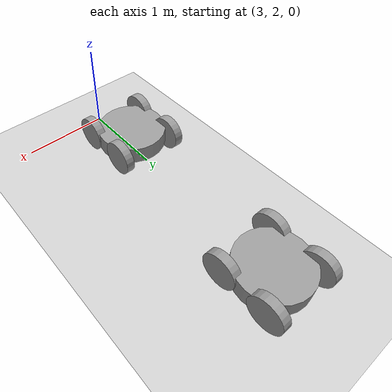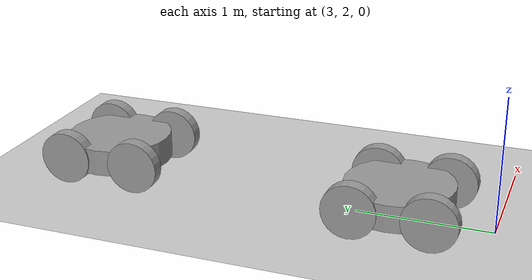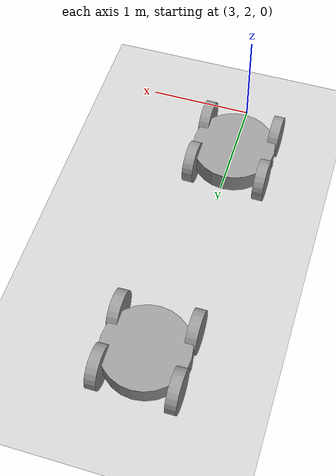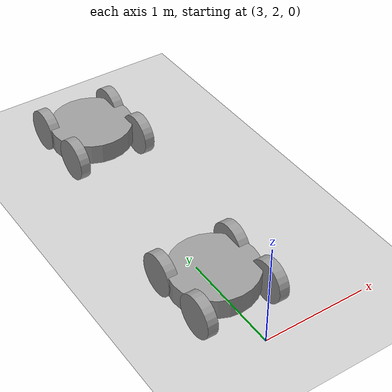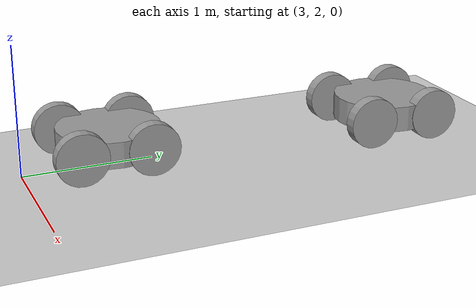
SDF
<sdf version="1.7">
 <world name="default">
  <model name="ground_plane">
   <static>1</static>
   <link name="link">
    <collision name="collision_collision">
     <geometry><plane><normal>0 0 1</normal><size>100 100</size></plane></geometry>
     <surface>
      <contact><collide_bitmask>65535</collide_bitmask></contact>
      <friction><ode><mu>100</mu><mu2>50</mu2></ode></friction>
     </surface>
    </collision>
    <visual name="visual_visual">
     <cast_shadows>0</cast_shadows>
     <geometry><plane><normal>0 0 1</normal><size>100 100</size></plane></geometry>
     <material>
      <script><uri>file://media/materials/scripts/gazebo.material</uri><name>Gazebo/Grey</name></script>
     </material>
    </visual>
   </link>
  </model>
  <model name="robot2">
   <link name="link_0">
    <inertial>
     <mass>1</mass>
     <inertia><ixx>0.145833</ixx><ixy>0</ixy><ixz>0</ixz><iyy>0.145833</iyy><iyz>0</iyz><izz>0.125</izz></inertia>
    </inertial>
    <pose>-0 0.020098 0 0 -0 0</pose>
    <visual name="visual">
     <geometry><cylinder><radius>0.4</radius><length>0.2</length></cylinder></geometry>
     <material>
      <lighting>1</lighting>
      <script><uri>file://media/materials/scripts/gazebo.material</uri><name>Gazebo/Grey</name></script>
      <shader type="pixel"><normal_map>__default__</normal_map></shader>
      <ambient>0.3 0.3 0.3 1</ambient>
      <diffuse>0.7 0.7 0.7 1</diffuse>
      <specular>0.01 0.01 0.01 1</specular>
      <emissive>0 0 0 1</emissive>
     </material>
    </visual>
    <collision name="collision">
     <geometry><cylinder><radius>0.4</radius><length>0.2</length></cylinder></geometry>
     <surface>
      <friction>
       <ode><mu>1</mu><mu2>1</mu2><fdir1>0 0 0</fdir1><slip1>0</slip1><slip2>0</slip2></ode>
       <torsional>
        <coefficient>1</coefficient>
        <patch_radius>0</patch_radius>
        <surface_radius>0</surface_radius>
        <use_patch_radius>1</use_patch_radius>
        <ode><slip>0</slip></ode>
       </torsional>
      </friction>
      <bounce><restitution_coefficient>0</restitution_coefficient><threshold>1e+06</threshold></bounce>
      <contact>
       <collide_without_contact>0</collide_without_contact>
       <collide_without_contact_bitmask>1</collide_without_contact_bitmask>
       <collide_bitmask>1</collide_bitmask>
       <ode>
        <soft_cfm>0</soft_cfm>
        <soft_erp>0.2</soft_erp>
        <kp>1e+13</kp>
        <kd>1</kd>
        <max_vel>0.01</max_vel>
        <min_depth>0</min_depth>
       </ode>
       <bullet>
        <split_impulse>1</split_impulse>
        <split_impulse_penetration_threshold>-0.01</split_impulse_penetration_threshold>
        <soft_cfm>0</soft_cfm>
        <soft_erp>0.2</soft_erp>
        <kp>1e+13</kp>
        <kd>1</kd>
       </bullet>
      </contact>
     </surface>
    </collision>
   </link>
   <link name="link_1">
    <inertial>
     <mass>1</mass>
     <inertia><ixx>0.145833</ixx><ixy>0</ixy><ixz>0</ixz><iyy>0.145833</iyy><iyz>0</iyz><izz>0.125</izz></inertia>
    </inertial>
    <pose>-0.34992 0.280098 0 0 -0 0</pose>
    <visual name="visual">
     <pose>0 0 0 0 1.57 0</pose>
     <geometry><cylinder><radius>0.2</radius><length>0.1</length></cylinder></geometry>
     <material>
      <lighting>1</lighting>
      <script><uri>file://media/materials/scripts/gazebo.material</uri><name>Gazebo/Grey</name></script>
      <shader type="pixel"><normal_map>__default__</normal_map></shader>
      <ambient>0.3 0.3 0.3 1</ambient>
      <diffuse>0.7 0.7 0.7 1</diffuse>
      <specular>0.01 0.01 0.01 1</specular>
      <emissive>0 0 0 1</emissive>
     </material>
    </visual>
    <collision name="collision">
     <pose>0 0 0 0 1.57 0</pose>
     <geometry><cylinder><radius>0.2</radius><length>0.1</length></cylinder></geometry>
     <surface>
      <friction>
       <ode><mu>1</mu><mu2>1</mu2><fdir1>0 0 0</fdir1><slip1>0</slip1><slip2>0</slip2></ode>
       <torsional>
        <coefficient>1</coefficient>
        <patch_radius>0</patch_radius>
        <surface_radius>0</surface_radius>
        <use_patch_radius>1</use_patch_radius>
        <ode><slip>0</slip></ode>
       </torsional>
      </friction>
      <bounce><restitution_coefficient>0</restitution_coefficient><threshold>1e+06</threshold></bounce>
      <contact>
       <collide_without_contact>0</collide_without_contact>
       <collide_without_contact_bitmask>1</collide_without_contact_bitmask>
       <collide_bitmask>1</collide_bitmask>
       <ode>
        <soft_cfm>0</soft_cfm>
        <soft_erp>0.2</soft_erp>
        <kp>1e+13</kp>
        <kd>1</kd>
        <max_vel>0.01</max_vel>
        <min_depth>0</min_depth>
       </ode>
       <bullet>
        <split_impulse>1</split_impulse>
        <split_impulse_penetration_threshold>-0.01</split_impulse_penetration_threshold>
        <soft_cfm>0</soft_cfm>
        <soft_erp>0.2</soft_erp>
        <kp>1e+13</kp>
        <kd>1</kd>
       </bullet>
      </contact>
     </surface>
    </collision>
   </link>
   <link name="link_1_clone">
    <inertial>
     <mass>1</mass>
     <inertia><ixx>0.145833</ixx><ixy>0</ixy><ixz>0</ixz><iyy>0.145833</iyy><iyz>0</iyz><izz>0.125</izz></inertia>
    </inertial>
    <pose>-0.34992 -0.279902 0 0 -0 0</pose>
    <visual name="visual">
     <pose>0 0 0 0 1.57 0</pose>
     <geometry><cylinder><radius>0.2</radius><length>0.1</length></cylinder></geometry>
     <material>
      <lighting>1</lighting>
      <script><uri>file://media/materials/scripts/gazebo.material</uri><name>Gazebo/Grey</name></script>
      <shader type="pixel"><normal_map>__default__</normal_map></shader>
      <ambient>0.3 0.3 0.3 1</ambient>
      <diffuse>0.7 0.7 0.7 1</diffuse>
      <specular>0.01 0.01 0.01 1</specular>
      <emissive>0 0 0 1</emissive>
     </material>
    </visual>
    <collision name="collision">
     <pose>0 0 0 0 1.57 0</pose>
     <geometry><cylinder><radius>0.2</radius><length>0.1</length></cylinder></geometry>
     <surface>
      <friction>
       <ode><mu>1</mu><mu2>1</mu2><fdir1>0 0 0</fdir1><slip1>0</slip1><slip2>0</slip2></ode>
       <torsional>
        <coefficient>1</coefficient>
        <patch_radius>0</patch_radius>
        <surface_radius>0</surface_radius>
        <use_patch_radius>1</use_patch_radius>
        <ode><slip>0</slip></ode>
       </torsional>
      </friction>
      <bounce><restitution_coefficient>0</restitution_coefficient><threshold>1e+06</threshold></bounce>
      <contact>
       <collide_without_contact>0</collide_without_contact>
       <collide_without_contact_bitmask>1</collide_without_contact_bitmask>
       <collide_bitmask>1</collide_bitmask>
       <ode>
        <soft_cfm>0</soft_cfm>
        <soft_erp>0.2</soft_erp>
        <kp>1e+13</kp>
        <kd>1</kd>
        <max_vel>0.01</max_vel>
        <min_depth>0</min_depth>
       </ode>
       <bullet>
        <split_impulse>1</split_impulse>
        <split_impulse_penetration_threshold>-0.01</split_impulse_penetration_threshold>
        <soft_cfm>0</soft_cfm>
        <soft_erp>0.2</soft_erp>
        <kp>1e+13</kp>
        <kd>1</kd>
       </bullet>
      </contact>
     </surface>
    </collision>
   </link>
   <link name="link_1_clone_0">
    <inertial>
     <mass>1</mass>
     <inertia><ixx>0.145833</ixx><ixy>0</ixy><ixz>0</ixz><iyy>0.145833</iyy><iyz>0</iyz><izz>0.125</izz></inertia>
    </inertial>
    <pose>0.34992 0.259608 0 0 -0 0</pose>
    <visual name="visual">
     <pose>0 0 0 0 1.57 0</pose>
     <geometry><cylinder><radius>0.2</radius><length>0.1</length></cylinder></geometry>
     <material>
      <lighting>1</lighting>
      <script><uri>file://media/materials/scripts/gazebo.material</uri><name>Gazebo/Grey</name></script>
      <shader type="pixel"><normal_map>__default__</normal_map></shader>
      <ambient>0.3 0.3 0.3 1</ambient>
      <diffuse>0.7 0.7 0.7 1</diffuse>
      <specular>0.01 0.01 0.01 1</specular>
      <emissive>0 0 0 1</emissive>
     </material>
    </visual>
    <collision name="collision">
     <pose>0 0 0 0 1.57 0</pose>
     <geometry><cylinder><radius>0.2</radius><length>0.1</length></cylinder></geometry>
     <surface>
      <friction>
       <ode><mu>1</mu><mu2>1</mu2><fdir1>0 0 0</fdir1><slip1>0</slip1><slip2>0</slip2></ode>
       <torsional>
        <coefficient>1</coefficient>
        <patch_radius>0</patch_radius>
        <surface_radius>0</surface_radius>
        <use_patch_radius>1</use_patch_radius>
        <ode><slip>0</slip></ode>
       </torsional>
      </friction>
      <bounce><restitution_coefficient>0</restitution_coefficient><threshold>1e+06</threshold></bounce>
      <contact>
       <collide_without_contact>0</collide_without_contact>
       <collide_without_contact_bitmask>1</collide_without_contact_bitmask>
       <collide_bitmask>1</collide_bitmask>
       <ode>
        <soft_cfm>0</soft_cfm>
        <soft_erp>0.2</soft_erp>
        <kp>1e+13</kp>
        <kd>1</kd>
        <max_vel>0.01</max_vel>
        <min_depth>0</min_depth>
       </ode>
       <bullet>
        <split_impulse>1</split_impulse>
        <split_impulse_penetration_threshold>-0.01</split_impulse_penetration_threshold>
        <soft_cfm>0</soft_cfm>
        <soft_erp>0.2</soft_erp>
        <kp>1e+13</kp>
        <kd>1</kd>
       </bullet>
      </contact>
     </surface>
    </collision>
   </link>
   <link name="link_1_clone_1">
    <inertial>
     <mass>1</mass>
     <inertia><ixx>0.145833</ixx><ixy>0</ixy><ixz>0</ixz><iyy>0.145833</iyy><iyz>0</iyz><izz>0.125</izz></inertia>
    </inertial>
    <pose>0.34992 -0.279902 0 0 -0 0</pose>
    <visual name="visual">
     <pose>0 0 0 0 1.57 0</pose>
     <geometry><cylinder><radius>0.2</radius><length>0.1</length></cylinder></geometry>
     <material>
      <lighting>1</lighting>
      <script><uri>file://media/materials/scripts/gazebo.material</uri><name>Gazebo/Grey</name></script>
      <shader type="pixel"><normal_map>__default__</normal_map></shader>
      <ambient>0.3 0.3 0.3 1</ambient>
      <diffuse>0.7 0.7 0.7 1</diffuse>
      <specular>0.01 0.01 0.01 1</specular>
      <emissive>0 0 0 1</emissive>
     </material>
    </visual>
    <collision name="collision">
     <pose>0 0 0 0 1.57 0</pose>
     <geometry><cylinder><radius>0.2</radius><length>0.1</length></cylinder></geometry>
     <surface>
      <friction>
       <ode><mu>1</mu><mu2>1</mu2><fdir1>0 0 0</fdir1><slip1>0</slip1><slip2>0</slip2></ode>
       <torsional>
        <coefficient>1</coefficient>
        <patch_radius>0</patch_radius>
        <surface_radius>0</surface_radius>
        <use_patch_radius>1</use_patch_radius>
        <ode><slip>0</slip></ode>
       </torsional>
      </friction>
      <bounce><restitution_coefficient>0</restitution_coefficient><threshold>1e+06</threshold></bounce>
      <contact>
       <collide_without_contact>0</collide_without_contact>
       <collide_without_contact_bitmask>1</collide_without_contact_bitmask>
       <collide_bitmask>1</collide_bitmask>
       <ode>
        <soft_cfm>0</soft_cfm>
        <soft_erp>0.2</soft_erp>
        <kp>1e+13</kp>
        <kd>1</kd>
        <max_vel>0.01</max_vel>
        <min_depth>0</min_depth>
       </ode>
       <bullet>
        <split_impulse>1</split_impulse>
        <split_impulse_penetration_threshold>-0.01</split_impulse_penetration_threshold>
        <soft_cfm>0</soft_cfm>
        <soft_erp>0.2</soft_erp>
        <kp>1e+13</kp>
        <kd>1</kd>
       </bullet>
      </contact>
     </surface>
    </collision>
   </link>
   <joint name="link_0_JOINT_0" type="revolute">
    <parent>link_0</parent>
    <child>link_1</child>
    <axis>
     <xyz>1 0 0</xyz>
     <limit>
      <lower>-1.79769e+308</lower>
      <upper>1.79769e+308</upper>
      <effort>-1</effort>
      <velocity>-1</velocity>
     </limit>
     <dynamics>
      <spring_reference>0</spring_reference>
      <spring_stiffness>0</spring_stiffness>
      <damping>0</damping>
     </dynamics>
    </axis>
    <physics>
     <ode><limit><cfm>0</cfm><erp>0.2</erp></limit><suspension><cfm>0</cfm><erp>0.2</erp></suspension></ode>
    </physics>
   </joint>
   <joint name="link_0_JOINT_1" type="revolute">
    <parent>link_0</parent>
    <child>link_1_clone</child>
    <axis>
     <xyz>1 0 0</xyz>
     <limit>
      <lower>-1.79769e+308</lower>
      <upper>1.79769e+308</upper>
      <effort>-1</effort>
      <velocity>-1</velocity>
     </limit>
     <dynamics>
      <spring_reference>0</spring_reference>
      <spring_stiffness>0</spring_stiffness>
      <damping>0</damping>
     </dynamics>
    </axis>
    <physics>
     <ode><limit><cfm>0</cfm><erp>0.2</erp></limit><suspension><cfm>0</cfm><erp>0.2</erp></suspension></ode>
    </physics>
   </joint>
   <joint name="link_0_JOINT_2" type="revolute">
    <parent>link_0</parent>
    <child>link_1_clone_0</child>
    <axis>
     <xyz>1 0 0</xyz>
     <limit>
      <lower>-1.79769e+308</lower>
      <upper>1.79769e+308</upper>
      <effort>-1</effort>
      <velocity>-1</velocity>
     </limit>
     <dynamics>
      <spring_reference>0</spring_reference>
      <spring_stiffness>0</spring_stiffness>
      <damping>0</damping>
     </dynamics>
    </axis>
    <physics>
     <ode><limit><cfm>0</cfm><erp>0.2</erp></limit><suspension><cfm>0</cfm><erp>0.2</erp></suspension></ode>
    </physics>
   </joint>
   <joint name="link_0_JOINT_3" type="revolute">
    <parent>link_0</parent>
    <child>link_1_clone_1</child>
    <axis>
     <xyz>1 0 0</xyz>
     <limit>
      <lower>-1.79769e+308</lower>
      <upper>1.79769e+308</upper>
      <effort>-1</effort>
      <velocity>-1</velocity>
     </limit>
     <dynamics>
      <spring_reference>0</spring_reference>
      <spring_stiffness>0</spring_stiffness>
      <damping>0</damping>
     </dynamics>
    </axis>
    <physics>
     <ode><limit><cfm>0</cfm><erp>0.2</erp></limit><suspension><cfm>0</cfm><erp>0.2</erp></suspension></ode>
    </physics>
   </joint>
   <static>0</static>
   <pose>3.11458 4.94886 0.200039 -1e-06 0 0.005724</pose>
  </model>
  <model name="robot2_clone">
   <link name="link_0">
    <inertial>
     <mass>1</mass>
     <inertia><ixx>0.145833</ixx><ixy>0</ixy><ixz>0</ixz><iyy>0.145833</iyy><iyz>0</iyz><izz>0.125</izz></inertia>
    </inertial>
    <pose>-0 0.020098 0 0 -0 0</pose>
    <visual name="visual">
     <geometry><cylinder><radius>0.4</radius><length>0.2</length></cylinder></geometry>
     <material>
      <lighting>1</lighting>
      <script><uri>file://media/materials/scripts/gazebo.material</uri><name>Gazebo/Grey</name></script>
      <shader type="pixel"><normal_map>__default__</normal_map></shader>
      <ambient>0.3 0.3 0.3 1</ambient>
      <diffuse>0.7 0.7 0.7 1</diffuse>
      <specular>0.01 0.01 0.01 1</specular>
      <emissive>0 0 0 1</emissive>
     </material>
    </visual>
    <collision name="collision">
     <geometry><cylinder><radius>0.4</radius><length>0.2</length></cylinder></geometry>
     <surface>
      <friction>
       <ode><mu>1</mu><mu2>1</mu2><fdir1>0 0 0</fdir1><slip1>0</slip1><slip2>0</slip2></ode>
       <torsional>
        <coefficient>1</coefficient>
        <patch_radius>0</patch_radius>
        <surface_radius>0</surface_radius>
        <use_patch_radius>1</use_patch_radius>
        <ode><slip>0</slip></ode>
       </torsional>
      </friction>
      <bounce><restitution_coefficient>0</restitution_coefficient><threshold>1e+06</threshold></bounce>
      <contact>
       <collide_without_contact>0</collide_without_contact>
       <collide_without_contact_bitmask>1</collide_without_contact_bitmask>
       <collide_bitmask>1</collide_bitmask>
       <ode>
        <soft_cfm>0</soft_cfm>
        <soft_erp>0.2</soft_erp>
        <kp>1e+13</kp>
        <kd>1</kd>
        <max_vel>0.01</max_vel>
        <min_depth>0</min_depth>
       </ode>
       <bullet>
        <split_impulse>1</split_impulse>
        <split_impulse_penetration_threshold>-0.01</split_impulse_penetration_threshold>
        <soft_cfm>0</soft_cfm>
        <soft_erp>0.2</soft_erp>
        <kp>1e+13</kp>
        <kd>1</kd>
       </bullet>
      </contact>
     </surface>
    </collision>
   </link>
   <link name="link_1">
    <inertial>
     <mass>1</mass>
     <inertia><ixx>0.145833</ixx><ixy>0</ixy><ixz>0</ixz><iyy>0.145833</iyy><iyz>0</iyz><izz>0.125</izz></inertia>
    </inertial>
    <pose>-0.34992 0.280098 0 0 -0 0</pose>
    <visual name="visual">
     <pose>0 0 0 0 1.57 0</pose>
     <geometry><cylinder><radius>0.2</radius><length>0.1</length></cylinder></geometry>
     <material>
      <lighting>1</lighting>
      <script><uri>file://media/materials/scripts/gazebo.material</uri><name>Gazebo/Grey</name></script>
      <shader type="pixel"><normal_map>__default__</normal_map></shader>
      <ambient>0.3 0.3 0.3 1</ambient>
      <diffuse>0.7 0.7 0.7 1</diffuse>
      <specular>0.01 0.01 0.01 1</specular>
      <emissive>0 0 0 1</emissive>
     </material>
    </visual>
    <collision name="collision">
     <pose>0 0 0 0 1.57 0</pose>
     <geometry><cylinder><radius>0.2</radius><length>0.1</length></cylinder></geometry>
     <surface>
      <friction>
       <ode><mu>1</mu><mu2>1</mu2><fdir1>0 0 0</fdir1><slip1>0</slip1><slip2>0</slip2></ode>
       <torsional>
        <coefficient>1</coefficient>
        <patch_radius>0</patch_radius>
        <surface_radius>0</surface_radius>
        <use_patch_radius>1</use_patch_radius>
        <ode><slip>0</slip></ode>
       </torsional>
      </friction>
      <bounce><restitution_coefficient>0</restitution_coefficient><threshold>1e+06</threshold></bounce>
      <contact>
       <collide_without_contact>0</collide_without_contact>
       <collide_without_contact_bitmask>1</collide_without_contact_bitmask>
       <collide_bitmask>1</collide_bitmask>
       <ode>
        <soft_cfm>0</soft_cfm>
        <soft_erp>0.2</soft_erp>
        <kp>1e+13</kp>
        <kd>1</kd>
        <max_vel>0.01</max_vel>
        <min_depth>0</min_depth>
       </ode>
       <bullet>
        <split_impulse>1</split_impulse>
        <split_impulse_penetration_threshold>-0.01</split_impulse_penetration_threshold>
        <soft_cfm>0</soft_cfm>
        <soft_erp>0.2</soft_erp>
        <kp>1e+13</kp>
        <kd>1</kd>
       </bullet>
      </contact>
     </surface>
    </collision>
   </link>
   <link name="link_1_clone">
    <inertial>
     <mass>1</mass>
     <inertia><ixx>0.145833</ixx><ixy>0</ixy><ixz>0</ixz><iyy>0.145833</iyy><iyz>0</iyz><izz>0.125</izz></inertia>
    </inertial>
    <pose>-0.34992 -0.279902 0 0 -0 0</pose>
    <visual name="visual">
     <pose>0 0 0 0 1.57 0</pose>
     <geometry><cylinder><radius>0.2</radius><length>0.1</length></cylinder></geometry>
     <material>
      <lighting>1</lighting>
      <script><uri>file://media/materials/scripts/gazebo.material</uri><name>Gazebo/Grey</name></script>
      <shader type="pixel"><normal_map>__default__</normal_map></shader>
      <ambient>0.3 0.3 0.3 1</ambient>
      <diffuse>0.7 0.7 0.7 1</diffuse>
      <specular>0.01 0.01 0.01 1</specular>
      <emissive>0 0 0 1</emissive>
     </material>
    </visual>
    <collision name="collision">
     <pose>0 0 0 0 1.57 0</pose>
     <geometry><cylinder><radius>0.2</radius><length>0.1</length></cylinder></geometry>
     <surface>
      <friction>
       <ode><mu>1</mu><mu2>1</mu2><fdir1>0 0 0</fdir1><slip1>0</slip1><slip2>0</slip2></ode>
       <torsional>
        <coefficient>1</coefficient>
        <patch_radius>0</patch_radius>
        <surface_radius>0</surface_radius>
        <use_patch_radius>1</use_patch_radius>
        <ode><slip>0</slip></ode>
       </torsional>
      </friction>
      <bounce><restitution_coefficient>0</restitution_coefficient><threshold>1e+06</threshold></bounce>
      <contact>
       <collide_without_contact>0</collide_without_contact>
       <collide_without_contact_bitmask>1</collide_without_contact_bitmask>
       <collide_bitmask>1</collide_bitmask>
       <ode>
        <soft_cfm>0</soft_cfm>
        <soft_erp>0.2</soft_erp>
        <kp>1e+13</kp>
        <kd>1</kd>
        <max_vel>0.01</max_vel>
        <min_depth>0</min_depth>
       </ode>
       <bullet>
        <split_impulse>1</split_impulse>
        <split_impulse_penetration_threshold>-0.01</split_impulse_penetration_threshold>
        <soft_cfm>0</soft_cfm>
        <soft_erp>0.2</soft_erp>
        <kp>1e+13</kp>
        <kd>1</kd>
       </bullet>
      </contact>
     </surface>
    </collision>
   </link>
   <link name="link_1_clone_0">
    <inertial>
     <mass>1</mass>
     <inertia><ixx>0.145833</ixx><ixy>0</ixy><ixz>0</ixz><iyy>0.145833</iyy><iyz>0</iyz><izz>0.125</izz></inertia>
    </inertial>
    <pose>0.34992 0.259608 0 0 -0 0</pose>
    <visual name="visual">
     <pose>0 0 0 0 1.57 0</pose>
     <geometry><cylinder><radius>0.2</radius><length>0.1</length></cylinder></geometry>
     <material>
      <lighting>1</lighting>
      <script><uri>file://media/materials/scripts/gazebo.material</uri><name>Gazebo/Grey</name></script>
      <shader type="pixel"><normal_map>__default__</normal_map></shader>
      <ambient>0.3 0.3 0.3 1</ambient>
      <diffuse>0.7 0.7 0.7 1</diffuse>
      <specular>0.01 0.01 0.01 1</specular>
      <emissive>0 0 0 1</emissive>
     </material>
    </visual>
    <collision name="collision">
     <pose>0 0 0 0 1.57 0</pose>
     <geometry><cylinder><radius>0.2</radius><length>0.1</length></cylinder></geometry>
     <surface>
      <friction>
       <ode><mu>1</mu><mu2>1</mu2><fdir1>0 0 0</fdir1><slip1>0</slip1><slip2>0</slip2></ode>
       <torsional>
        <coefficient>1</coefficient>
        <patch_radius>0</patch_radius>
        <surface_radius>0</surface_radius>
        <use_patch_radius>1</use_patch_radius>
        <ode><slip>0</slip></ode>
       </torsional>
      </friction>
      <bounce><restitution_coefficient>0</restitution_coefficient><threshold>1e+06</threshold></bounce>
      <contact>
       <collide_without_contact>0</collide_without_contact>
       <collide_without_contact_bitmask>1</collide_without_contact_bitmask>
       <collide_bitmask>1</collide_bitmask>
       <ode>
        <soft_cfm>0</soft_cfm>
        <soft_erp>0.2</soft_erp>
        <kp>1e+13</kp>
        <kd>1</kd>
        <max_vel>0.01</max_vel>
        <min_depth>0</min_depth>
       </ode>
       <bullet>
        <split_impulse>1</split_impulse>
        <split_impulse_penetration_threshold>-0.01</split_impulse_penetration_threshold>
        <soft_cfm>0</soft_cfm>
        <soft_erp>0.2</soft_erp>
        <kp>1e+13</kp>
        <kd>1</kd>
       </bullet>
      </contact>
     </surface>
    </collision>
   </link>
   <link name="link_1_clone_1">
    <inertial>
     <mass>1</mass>
     <inertia><ixx>0.145833</ixx><ixy>0</ixy><ixz>0</ixz><iyy>0.145833</iyy><iyz>0</iyz><izz>0.125</izz></inertia>
    </inertial>
    <pose>0.34992 -0.279902 0 0 -0 0</pose>
    <visual name="visual">
     <pose>0 0 0 0 1.57 0</pose>
     <geometry><cylinder><radius>0.2</radius><length>0.1</length></cylinder></geometry>
     <material>
      <lighting>1</lighting>
      <script><uri>file://media/materials/scripts/gazebo.material</uri><name>Gazebo/Grey</name></script>
      <shader type="pixel"><normal_map>__default__</normal_map></shader>
      <ambient>0.3 0.3 0.3 1</ambient>
      <diffuse>0.7 0.7 0.7 1</diffuse>
      <specular>0.01 0.01 0.01 1</specular>
      <emissive>0 0 0 1</emissive>
     </material>
    </visual>
    <collision name="collision">
     <pose>0 0 0 0 1.57 0</pose>
     <geometry><cylinder><radius>0.2</radius><length>0.1</length></cylinder></geometry>
     <surface>
      <friction>
       <ode><mu>1</mu><mu2>1</mu2><fdir1>0 0 0</fdir1><slip1>0</slip1><slip2>0</slip2></ode>
       <torsional>
        <coefficient>1</coefficient>
        <patch_radius>0</patch_radius>
        <surface_radius>0</surface_radius>
        <use_patch_radius>1</use_patch_radius>
        <ode><slip>0</slip></ode>
       </torsional>
      </friction>
      <bounce><restitution_coefficient>0</restitution_coefficient><threshold>1e+06</threshold></bounce>
      <contact>
       <collide_without_contact>0</collide_without_contact>
       <collide_without_contact_bitmask>1</collide_without_contact_bitmask>
       <collide_bitmask>1</collide_bitmask>
       <ode>
        <soft_cfm>0</soft_cfm>
        <soft_erp>0.2</soft_erp>
        <kp>1e+13</kp>
        <kd>1</kd>
        <max_vel>0.01</max_vel>
        <min_depth>0</min_depth>
       </ode>
       <bullet>
        <split_impulse>1</split_impulse>
        <split_impulse_penetration_threshold>-0.01</split_impulse_penetration_threshold>
        <soft_cfm>0</soft_cfm>
        <soft_erp>0.2</soft_erp>
        <kp>1e+13</kp>
        <kd>1</kd>
       </bullet>
      </contact>
     </surface>
    </collision>
   </link>
   <joint name="link_0_JOINT_0" type="revolute">
    <parent>link_0</parent>
    <child>link_1</child>
    <axis>
     <xyz>1 0 0</xyz>
     <limit>
      <lower>-1.79769e+308</lower>
      <upper>1.79769e+308</upper>
      <effort>-1</effort>
      <velocity>-1</velocity>
     </limit>
     <dynamics>
      <spring_reference>0</spring_reference>
      <spring_stiffness>0</spring_stiffness>
      <damping>0</damping>
     </dynamics>
    </axis>
    <physics>
     <ode><limit><cfm>0</cfm><erp>0.2</erp></limit><suspension><cfm>0</cfm><erp>0.2</erp></suspension></ode>
    </physics>
   </joint>
   <joint name="link_0_JOINT_1" type="revolute">
    <parent>link_0</parent>
    <child>link_1_clone</child>
    <axis>
     <xyz>1 0 0</xyz>
     <limit>
      <lower>-1.79769e+308</lower>
      <upper>1.79769e+308</upper>
      <effort>-1</effort>
      <velocity>-1</velocity>
     </limit>
     <dynamics>
      <spring_reference>0</spring_reference>
      <spring_stiffness>0</spring_stiffness>
      <damping>0</damping>
     </dynamics>
    </axis>
    <physics>
     <ode><limit><cfm>0</cfm><erp>0.2</erp></limit><suspension><cfm>0</cfm><erp>0.2</erp></suspension></ode>
    </physics>
   </joint>
   <joint name="link_0_JOINT_2" type="revolute">
    <parent>link_0</parent>
    <child>link_1_clone_0</child>
    <axis>
     <xyz>1 0 0</xyz>
     <limit>
      <lower>-1.79769e+308</lower>
      <upper>1.79769e+308</upper>
      <effort>-1</effort>
      <velocity>-1</velocity>
     </limit>
     <dynamics>
      <spring_reference>0</spring_reference>
      <spring_stiffness>0</spring_stiffness>
      <damping>0</damping>
     </dynamics>
    </axis>
    <physics>
     <ode><limit><cfm>0</cfm><erp>0.2</erp></limit><suspension><cfm>0</cfm><erp>0.2</erp></suspension></ode>
    </physics>
   </joint>
   <joint name="link_0_JOINT_3" type="revolute">
    <parent>link_0</parent>
    <child>link_1_clone_1</child>
    <axis>
     <xyz>1 0 0</xyz>
     <limit>
      <lower>-1.79769e+308</lower>
      <upper>1.79769e+308</upper>
      <effort>-1</effort>
      <velocity>-1</velocity>
     </limit>
     <dynamics>
      <spring_reference>0</spring_reference>
      <spring_stiffness>0</spring_stiffness>
      <damping>0</damping>
     </dynamics>
    </axis>
    <physics>
     <ode><limit><cfm>0</cfm><erp>0.2</erp></limit><suspension><cfm>0</cfm><erp>0.2</erp></suspension></ode>
    </physics>
   </joint>
   <static>0</static>
   <pose>2.96553 2.66053 0.200035 0 -1.1e-05 -0.003532</pose>
  </model>
 </world>
</sdf>
